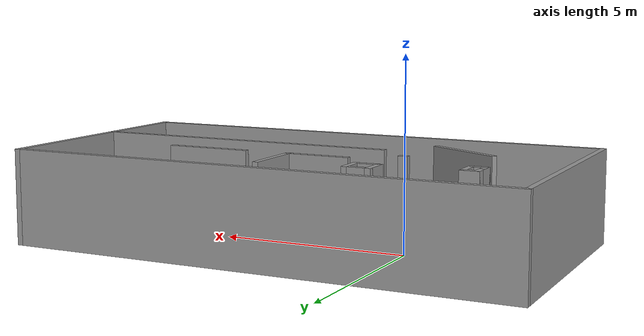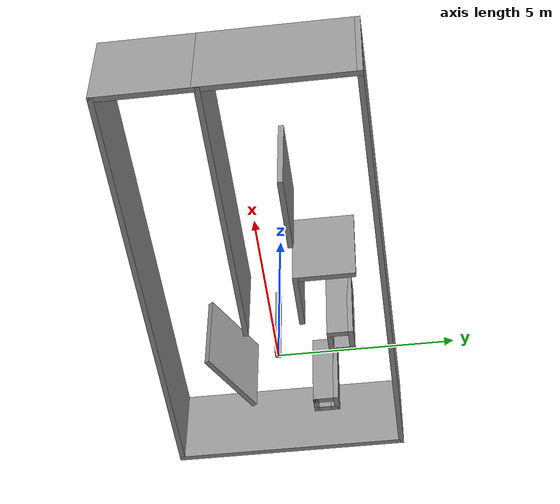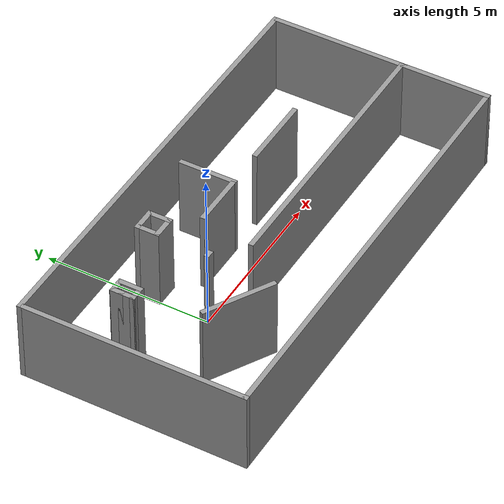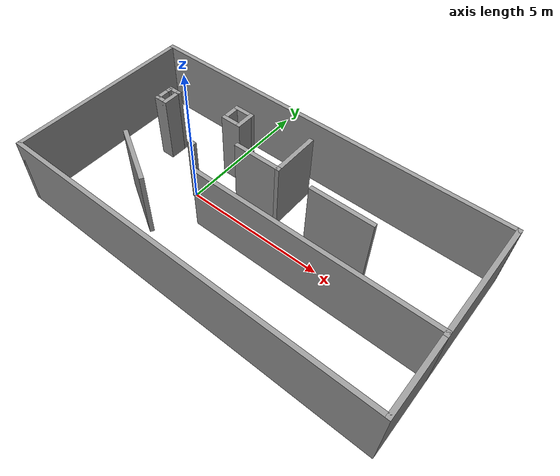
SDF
<?xml version='1.0'?>
<sdf version='1.6'>
  <model name='test2'>
    <pose frame=''>2.63696 -0.137302 0 0 -0 0</pose>
    <link name='Wall_0'>
      <collision name='Wall_0_Collision'>
        <geometry>
          <box>
            <size>0.25 0.15 2.5</size>
          </box>
        </geometry>
        <pose frame=''>0 0 1.25 0 -0 0</pose>
      </collision>
      <visual name='Wall_0_Visual'>
        <pose frame=''>0 0 1.25 0 -0 0</pose>
        <geometry>
          <box>
            <size>0.25 0.15 2.5</size>
          </box>
        </geometry>
        <material>
          <script>
            <uri>file://media/materials/scripts/gazebo.material</uri>
            <name>Gazebo/Grey</name>
          </script>
          <ambient>1 1 1 1</ambient>
        </material>
        <meta>
          <layer>0</layer>
        </meta>
      </visual>
      <pose frame=''>-2.59333 0.11365 0 0 -0 0</pose>
    </link>
    <link name='Wall_10'>
      <collision name='Wall_10_Collision'>
        <geometry>
          <box>
            <size>8.5 0.15 2.5</size>
          </box>
        </geometry>
        <pose frame=''>0 0 1.25 0 -0 0</pose>
      </collision>
      <visual name='Wall_10_Visual'>
        <pose frame=''>0 0 1.25 0 -0 0</pose>
        <geometry>
          <box>
            <size>8.5 0.15 2.5</size>
          </box>
        </geometry>
        <material>
          <script>
            <uri>file://media/materials/scripts/gazebo.material</uri>
            <name>Gazebo/Grey</name>
          </script>
          <ambient>1 1 1 1</ambient>
        </material>
        <meta>
          <layer>0</layer>
        </meta>
      </visual>
      <pose frame=''>2.48569 -0.683662 0 0 -0 0</pose>
    </link>
    <link name='Wall_12'>
      <collision name='Wall_12_Collision'>
        <geometry>
          <box>
            <size>1.75 0.15 2.5</size>
          </box>
        </geometry>
        <pose frame=''>0 0 1.25 0 -0 0</pose>
      </collision>
      <visual name='Wall_12_Visual'>
        <pose frame=''>0 0 1.25 0 -0 0</pose>
        <geometry>
          <box>
            <size>1.75 0.15 2.5</size>
          </box>
        </geometry>
        <material>
          <script>
            <uri>file://media/materials/scripts/gazebo.material</uri>
            <name>Gazebo/Grey</name>
          </script>
          <ambient>1 1 1 1</ambient>
        </material>
        <meta>
          <layer>0</layer>
        </meta>
      </visual>
      <pose frame=''>-0.626305 0.951552 0 0 -0 0</pose>
    </link>
    <link name='Wall_14'>
      <collision name='Wall_14_Collision'>
        <geometry>
          <box>
            <size>2.25 0.15 2.5</size>
          </box>
        </geometry>
        <pose frame=''>0 0 1.25 0 -0 0</pose>
      </collision>
      <visual name='Wall_14_Visual'>
        <pose frame=''>0 0 1.25 0 -0 0</pose>
        <geometry>
          <box>
            <size>2.25 0.15 2.5</size>
          </box>
        </geometry>
        <material>
          <script>
            <uri>file://media/materials/scripts/gazebo.material</uri>
            <name>Gazebo/Grey</name>
          </script>
          <ambient>1 1 1 1</ambient>
        </material>
        <meta>
          <layer>0</layer>
        </meta>
      </visual>
      <pose frame=''>2.45959 0.974422 0 0 -0 0</pose>
    </link>
    <link name='Wall_16'>
      <collision name='Wall_16_Collision'>
        <geometry>
          <box>
            <size>1.75 0.15 2.5</size>
          </box>
        </geometry>
        <pose frame=''>0 0 1.25 0 -0 0</pose>
      </collision>
      <visual name='Wall_16_Visual'>
        <pose frame=''>0 0 1.25 0 -0 0</pose>
        <geometry>
          <box>
            <size>1.75 0.15 2.5</size>
          </box>
        </geometry>
        <material>
          <script>
            <uri>file://media/materials/scripts/gazebo.material</uri>
            <name>Gazebo/Grey</name>
          </script>
          <ambient>1 1 1 1</ambient>
        </material>
        <meta>
          <layer>0</layer>
        </meta>
      </visual>
      <pose frame=''>0.173695 1.75155 0 0 -0 1.5708</pose>
    </link>
    <link name='Wall_18'>
      <collision name='Wall_18_Collision'>
        <geometry>
          <box>
            <size>0.75 0.15 2.5</size>
          </box>
        </geometry>
        <pose frame=''>0 0 1.25 0 -0 0</pose>
      </collision>
      <visual name='Wall_18_Visual'>
        <pose frame=''>0 0 1.25 0 -0 0</pose>
        <geometry>
          <box>
            <size>0.75 0.15 2.5</size>
          </box>
        </geometry>
        <material>
          <script>
            <uri>file://media/materials/scripts/gazebo.material</uri>
            <name>Gazebo/Grey</name>
          </script>
          <ambient>1 1 1 1</ambient>
        </material>
        <meta>
          <layer>0</layer>
        </meta>
      </visual>
      <pose frame=''>-2.60412 1.96659 0 0 -0 -1.5708</pose>
    </link>
    <link name='Wall_19'>
      <collision name='Wall_19_Collision'>
        <geometry>
          <box>
            <size>0.75 0.15 2.5</size>
          </box>
        </geometry>
        <pose frame=''>0 0 1.25 0 -0 0</pose>
      </collision>
      <visual name='Wall_19_Visual'>
        <pose frame=''>0 0 1.25 0 -0 0</pose>
        <geometry>
          <box>
            <size>0.75 0.15 2.5</size>
          </box>
        </geometry>
        <material>
          <script>
            <uri>file://media/materials/scripts/gazebo.material</uri>
            <name>Gazebo/Grey</name>
          </script>
          <ambient>1 1 1 1</ambient>
        </material>
        <meta>
          <layer>0</layer>
        </meta>
      </visual>
      <pose frame=''>-2.30412 1.66658 0 0 -0 0</pose>
    </link>
    <link name='Wall_2'>
      <collision name='Wall_2_Collision'>
        <geometry>
          <box>
            <size>0.5 0.15 2.5</size>
          </box>
        </geometry>
        <pose frame=''>0 0 1.25 0 -0 0</pose>
      </collision>
      <visual name='Wall_2_Visual'>
        <pose frame=''>0 0 1.25 0 -0 0</pose>
        <geometry>
          <box>
            <size>0.5 0.15 2.5</size>
          </box>
        </geometry>
        <material>
          <script>
            <uri>file://media/materials/scripts/gazebo.material</uri>
            <name>Gazebo/Grey</name>
          </script>
          <ambient>1 1 1 1</ambient>
        </material>
        <meta>
          <layer>0</layer>
        </meta>
      </visual>
      <pose frame=''>-4.98261 1.15391 0 0 -0 -1.5708</pose>
    </link>
    <link name='Wall_20'>
      <collision name='Wall_20_Collision'>
        <geometry>
          <box>
            <size>0.75 0.15 2.5</size>
          </box>
        </geometry>
        <pose frame=''>0 0 1.25 0 -0 0</pose>
      </collision>
      <visual name='Wall_20_Visual'>
        <pose frame=''>0 0 1.25 0 -0 0</pose>
        <geometry>
          <box>
            <size>0.75 0.15 2.5</size>
          </box>
        </geometry>
        <material>
          <script>
            <uri>file://media/materials/scripts/gazebo.material</uri>
            <name>Gazebo/Grey</name>
          </script>
          <ambient>1 1 1 1</ambient>
        </material>
        <meta>
          <layer>0</layer>
        </meta>
      </visual>
      <pose frame=''>-2.00412 1.96659 0 0 -0 1.5708</pose>
    </link>
    <link name='Wall_21'>
      <collision name='Wall_21_Collision'>
        <geometry>
          <box>
            <size>0.75 0.15 2.5</size>
          </box>
        </geometry>
        <pose frame=''>0 0 1.25 0 -0 0</pose>
      </collision>
      <visual name='Wall_21_Visual'>
        <pose frame=''>0 0 1.25 0 -0 0</pose>
        <geometry>
          <box>
            <size>0.75 0.15 2.5</size>
          </box>
        </geometry>
        <material>
          <script>
            <uri>file://media/materials/scripts/gazebo.material</uri>
            <name>Gazebo/Grey</name>
          </script>
          <ambient>1 1 1 1</ambient>
        </material>
        <meta>
          <layer>0</layer>
        </meta>
      </visual>
      <pose frame=''>-2.30412 2.26659 0 0 -0 3.14159</pose>
    </link>
    <link name='Wall_23'>
      <collision name='Wall_23_Collision'>
        <geometry>
          <box>
            <size>6.75 0.15 2.5</size>
          </box>
        </geometry>
        <pose frame=''>0 0 1.25 0 -0 0</pose>
      </collision>
      <visual name='Wall_23_Visual'>
        <pose frame=''>0 0 1.25 0 -0 0</pose>
        <geometry>
          <box>
            <size>6.75 0.15 2.5</size>
          </box>
        </geometry>
        <material>
          <script>
            <uri>file://media/materials/scripts/gazebo.material</uri>
            <name>Gazebo/Grey</name>
          </script>
          <ambient>1 1 1 1</ambient>
        </material>
        <meta>
          <layer>0</layer>
        </meta>
      </visual>
      <pose frame=''>-6.675 -0.05 0 0 -0 -1.5708</pose>
    </link>
    <link name='Wall_24'>
      <collision name='Wall_24_Collision'>
        <geometry>
          <box>
            <size>13.5 0.15 2.5</size>
          </box>
        </geometry>
        <pose frame=''>0 0 1.25 0 -0 0</pose>
      </collision>
      <visual name='Wall_24_Visual'>
        <pose frame=''>0 0 1.25 0 -0 0</pose>
        <geometry>
          <box>
            <size>13.5 0.15 2.5</size>
          </box>
        </geometry>
        <material>
          <script>
            <uri>file://media/materials/scripts/gazebo.material</uri>
            <name>Gazebo/Grey</name>
          </script>
          <ambient>1 1 1 1</ambient>
        </material>
        <meta>
          <layer>0</layer>
        </meta>
      </visual>
      <pose frame=''>0 -3.35 0 0 -0 0</pose>
    </link>
    <link name='Wall_25'>
      <collision name='Wall_25_Collision'>
        <geometry>
          <box>
            <size>2.75 0.15 2.5</size>
          </box>
        </geometry>
        <pose frame=''>0 0 1.25 0 -0 0</pose>
      </collision>
      <visual name='Wall_25_Visual'>
        <pose frame=''>0 0 1.25 0 -0 0</pose>
        <geometry>
          <box>
            <size>2.75 0.15 2.5</size>
          </box>
        </geometry>
        <material>
          <script>
            <uri>file://media/materials/scripts/gazebo.material</uri>
            <name>Gazebo/Grey</name>
          </script>
          <ambient>1 1 1 1</ambient>
        </material>
        <meta>
          <layer>0</layer>
        </meta>
      </visual>
      <pose frame=''>6.675 -2.05 0 0 -0 1.5708</pose>
    </link>
    <link name='Wall_26'>
      <collision name='Wall_26_Collision'>
        <geometry>
          <box>
            <size>4.25 0.15 2.5</size>
          </box>
        </geometry>
        <pose frame=''>0 0 1.25 0 -0 0</pose>
      </collision>
      <visual name='Wall_26_Visual'>
        <pose frame=''>0 0 1.25 0 -0 0</pose>
        <geometry>
          <box>
            <size>4.25 0.15 2.5</size>
          </box>
        </geometry>
        <material>
          <script>
            <uri>file://media/materials/scripts/gazebo.material</uri>
            <name>Gazebo/Grey</name>
          </script>
          <ambient>1 1 1 1</ambient>
        </material>
        <meta>
          <layer>0</layer>
        </meta>
      </visual>
      <pose frame=''>6.675 1.3 0 0 -0 1.5708</pose>
    </link>
    <link name='Wall_27'>
      <collision name='Wall_27_Collision'>
        <geometry>
          <box>
            <size>13.5 0.15 2.5</size>
          </box>
        </geometry>
        <pose frame=''>0 0 1.25 0 -0 0</pose>
      </collision>
      <visual name='Wall_27_Visual'>
        <pose frame=''>0 0 1.25 0 -0 0</pose>
        <geometry>
          <box>
            <size>13.5 0.15 2.5</size>
          </box>
        </geometry>
        <material>
          <script>
            <uri>file://media/materials/scripts/gazebo.material</uri>
            <name>Gazebo/Grey</name>
          </script>
          <ambient>1 1 1 1</ambient>
        </material>
        <meta>
          <layer>0</layer>
        </meta>
      </visual>
      <pose frame=''>0 3.35 0 0 -0 3.14159</pose>
    </link>
    <link name='Wall_3'>
      <collision name='Wall_3_Collision'>
        <geometry>
          <box>
            <size>0.5 0.15 2.5</size>
          </box>
        </geometry>
        <pose frame=''>0 0 1.25 0 -0 0</pose>
      </collision>
      <visual name='Wall_3_Visual'>
        <pose frame=''>0 0 1.25 0 -0 0</pose>
        <geometry>
          <box>
            <size>0.5 0.15 2.5</size>
          </box>
        </geometry>
        <material>
          <script>
            <uri>file://media/materials/scripts/gazebo.material</uri>
            <name>Gazebo/Grey</name>
          </script>
          <ambient>1 1 1 1</ambient>
        </material>
        <meta>
          <layer>0</layer>
        </meta>
      </visual>
      <pose frame=''>-4.80761 0.978909 0 0 -0 0</pose>
    </link>
    <link name='Wall_4'>
      <collision name='Wall_4_Collision'>
        <geometry>
          <box>
            <size>0.75 0.15 2.5</size>
          </box>
        </geometry>
        <pose frame=''>0 0 1.25 0 -0 0</pose>
      </collision>
      <visual name='Wall_4_Visual'>
        <pose frame=''>0 0 1.25 0 -0 0</pose>
        <geometry>
          <box>
            <size>0.75 0.15 2.5</size>
          </box>
        </geometry>
        <material>
          <script>
            <uri>file://media/materials/scripts/gazebo.material</uri>
            <name>Gazebo/Grey</name>
          </script>
          <ambient>1 1 1 1</ambient>
        </material>
        <meta>
          <layer>0</layer>
        </meta>
      </visual>
      <pose frame=''>-4.63261 1.27891 0 0 -0 1.5708</pose>
    </link>
    <link name='Wall_5'>
      <collision name='Wall_5_Collision'>
        <geometry>
          <box>
            <size>0.5 0.15 2.5</size>
          </box>
        </geometry>
        <pose frame=''>0 0 1.25 0 -0 0</pose>
      </collision>
      <visual name='Wall_5_Visual'>
        <pose frame=''>0 0 1.25 0 -0 0</pose>
        <geometry>
          <box>
            <size>0.5 0.15 2.5</size>
          </box>
        </geometry>
        <material>
          <script>
            <uri>file://media/materials/scripts/gazebo.material</uri>
            <name>Gazebo/Grey</name>
          </script>
          <ambient>1 1 1 1</ambient>
        </material>
        <meta>
          <layer>0</layer>
        </meta>
      </visual>
      <pose frame=''>-4.80761 1.57891 0 0 -0 3.14159</pose>
    </link>
    <link name='Wall_6'>
      <collision name='Wall_6_Collision'>
        <geometry>
          <box>
            <size>0.4 0.15 2.5</size>
          </box>
        </geometry>
        <pose frame=''>0 0 1.25 0 -0 0</pose>
      </collision>
      <visual name='Wall_6_Visual'>
        <pose frame=''>0 0 1.25 0 -0 0</pose>
        <geometry>
          <box>
            <size>0.4 0.15 2.5</size>
          </box>
        </geometry>
        <material>
          <script>
            <uri>file://media/materials/scripts/gazebo.material</uri>
            <name>Gazebo/Grey</name>
          </script>
          <ambient>1 1 1 1</ambient>
        </material>
        <meta>
          <layer>0</layer>
        </meta>
      </visual>
      <pose frame=''>-4.98261 1.45391 0 0 -0 -1.5708</pose>
    </link>
    <link name='Wall_8'>
      <collision name='Wall_8_Collision'>
        <geometry>
          <box>
            <size>2.25 0.15 2.5</size>
          </box>
        </geometry>
        <pose frame=''>0 0 1.25 0 -0 0</pose>
      </collision>
      <visual name='Wall_8_Visual'>
        <pose frame=''>0 0 1.25 0 -0 0</pose>
        <geometry>
          <box>
            <size>2.25 0.15 2.5</size>
          </box>
        </geometry>
        <material>
          <script>
            <uri>file://media/materials/scripts/gazebo.material</uri>
            <name>Gazebo/Grey</name>
          </script>
          <ambient>1 1 1 1</ambient>
        </material>
        <meta>
          <layer>0</layer>
        </meta>
      </visual>
      <pose frame=''>-3.62732 -1.39162 0 0 -0 -0.523599</pose>
    </link>
    <static>1</static>
  </model>
</sdf>
